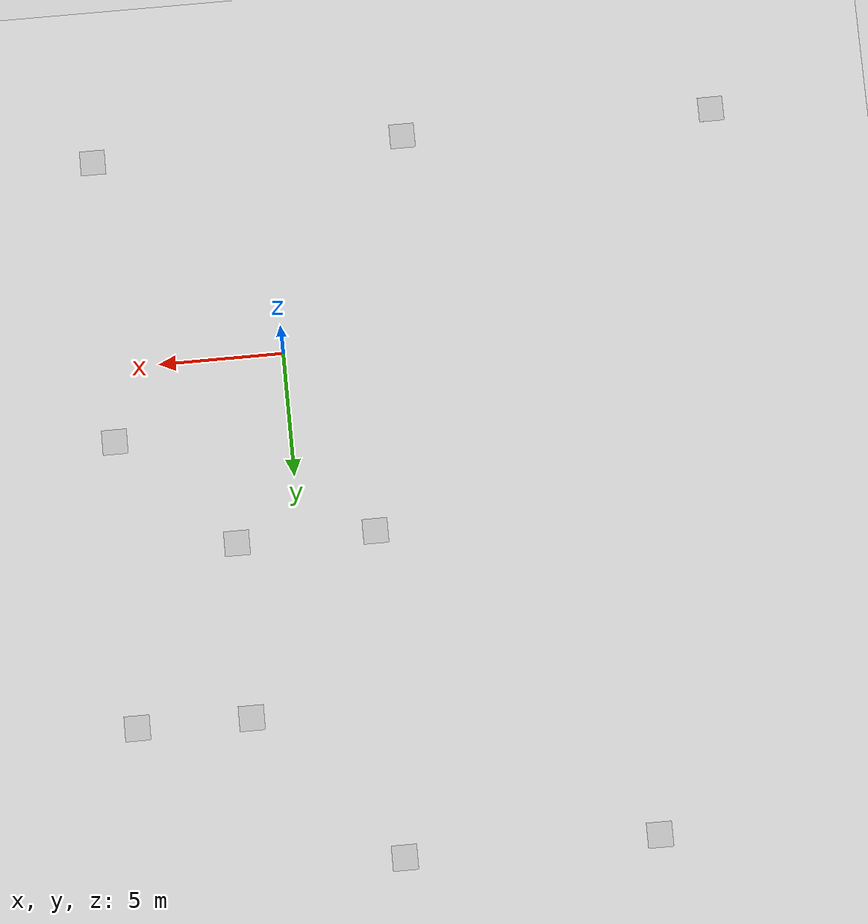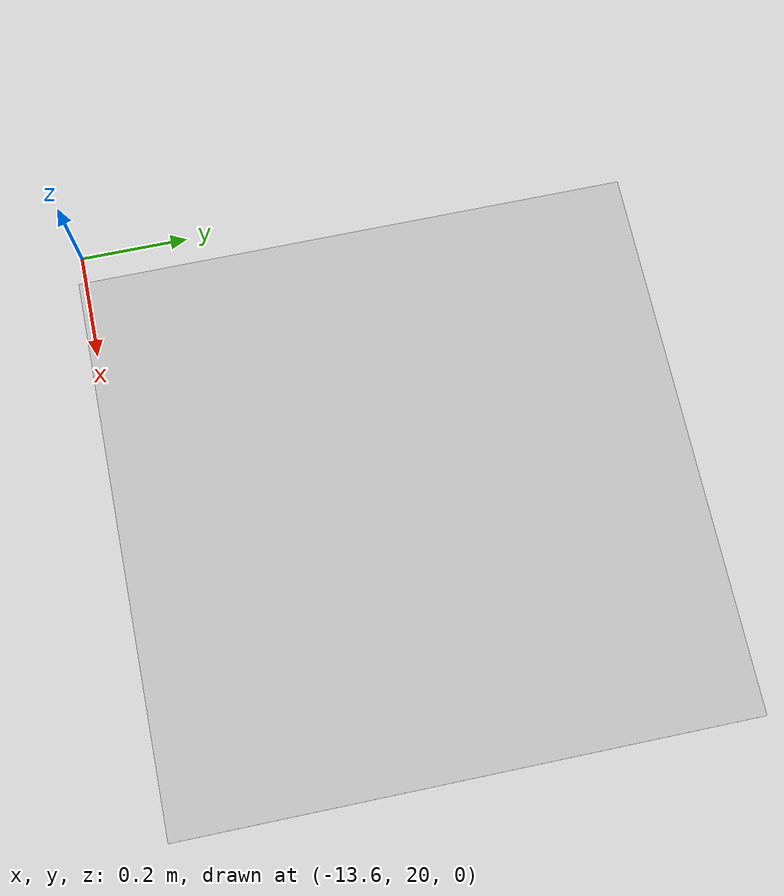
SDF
<sdf version="1.5">
 <world name="default">
  <include><uri>model://arrow</uri><name>arrow_1</name><pose>-18 -8.5 0.1 0 0 0</pose></include>
  <include><uri>model://arrow</uri><name>arrow_2</name><pose>-5.5 -8.5 0.1 0 0 0</pose></include>
  <include><uri>model://arrow</uri><name>arrow_3</name><pose>7 -8.5 0.1 0 0 1.57</pose></include>
  <include><uri>model://arrow</uri><name>arrow_4</name><pose>7 3 0.1 0 0 1.57</pose></include>
  <include><uri>model://arrow</uri><name>arrow_5</name><pose>7 14.5 0.1 0 0 3.14</pose></include>
  <include><uri>model://arrow</uri><name>arrow_6</name><pose>2.5 14.5 0.1 0 0 3.14</pose></include>
  <include><uri>model://arrow</uri><name>arrow_7</name><pose>2.5 7.5 0.1 0 0 3.14</pose></include>
  <include><uri>model://arrow</uri><name>arrow_8</name><pose>-3 7.5 0.1 0 0 1.57</pose></include>
  <include><uri>model://arrow</uri><name>arrow_9</name><pose>-3 20.5 0.1 0 0 3.14</pose></include>
  <include><uri>model://arrow</uri><name>arrow_10</name><pose>-13 20.5 0.1 0 0 3.14</pose></include>
  <include><uri>model://asphalt_plane</uri></include>
  <scene>
   <shadows>0</shadows>
   <ambient>0.4 0.4 0.4 1.0</ambient>
   <background>0.7 0.7 0.7 1</background>
   <sky><clouds><speed>12</speed></clouds></sky>
  </scene>
  <include><uri>model://sun</uri></include>
  <physics name="default_physics" default="0" type="ode">
   <gravity>0 0 -9.8066</gravity>
   <ode>
    <solver>
     <type>quick</type>
     <iters>10</iters>
     <sor>1.3</sor>
     <use_dynamic_moi_rescaling>0</use_dynamic_moi_rescaling>
    </solver>
    <constraints>
     <cfm>0</cfm>
     <erp>0.2</erp>
     <contact_max_correcting_vel>100</contact_max_correcting_vel>
     <contact_surface_layer>0.001</contact_surface_layer>
    </constraints>
   </ode>
   <max_step_size>0.004</max_step_size>
   <real_time_factor>1</real_time_factor>
   <real_time_update_rate>250</real_time_update_rate>
   <magnetic_field>6.0e-6 2.3e-5 -4.2e-5</magnetic_field>
  </physics>
 </world>
</sdf>

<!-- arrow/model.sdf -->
<sdf version='1.4'>
  <model name='arrow'>
    <static>true</static>
    <link name='link'>
      <collision name='collision'>
        <geometry>
          <plane>
            <normal>0 0 1</normal>
            <size>1 1</size>
          </plane>
        </geometry>
        <surface>
          <friction>
            <ode>
              <mu>0.5</mu>
              <mu2>.5</mu2>
            </ode>
          </friction>
        </surface>
      </collision>

      <visual name='visual_0'>
        <pose>0 0 0 0 0 0</pose>

        <cast_shadows>false</cast_shadows>
        <geometry>
          <plane>
            <normal>0 0 1</normal>
            <size>1 1</size>
          </plane>
        </geometry>
        <material>
          <script>
            <uri>model://arrow/materials/scripts</uri>
            <uri>model://arrow/materials/textures</uri>
            <name>vrc/arrow</name>
          </script>
        </material>
      </visual>
    </link>
  </model>
</sdf>
